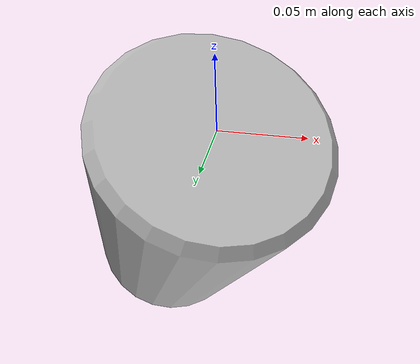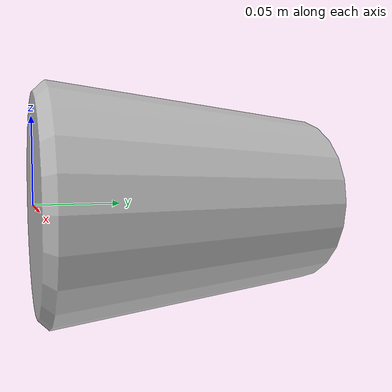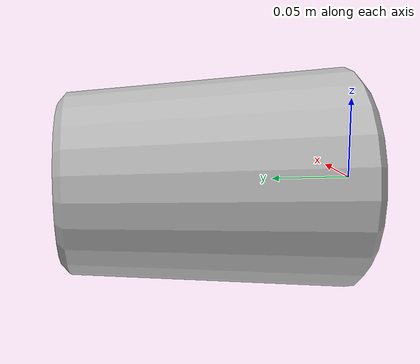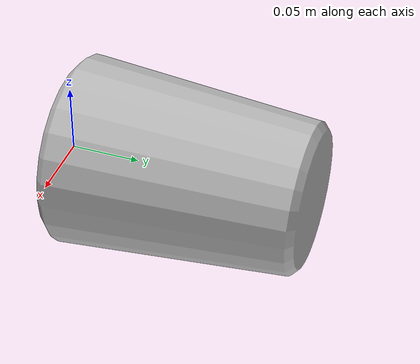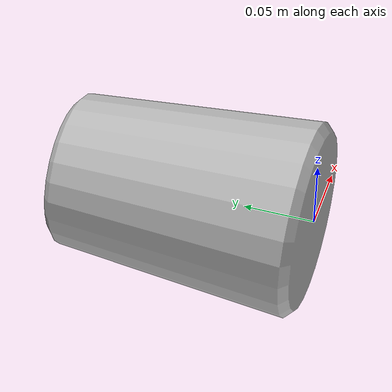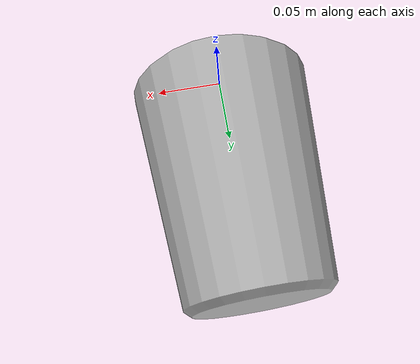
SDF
<?xml version="1.0" ?>
<sdf version="1.4">
  <model name="shelf3_metal3_1">
    <link name="body">
      <pose>0 0 0 0 0 0</pose>
      <inertial>
        <pose>   0.000000   0.082217   0.000000 0 0 0</pose>
        <mass>0.5</mass>
        <inertia>
          <ixx>0.01</ixx>
          <ixy>0</ixy>
          <ixz>0</ixz>
          <iyy>0.01</iyy>
          <iyz>0</iyz>
          <izz>0.01</izz>
        </inertia>
      </inertial>
      <collision name="collision">
        <geometry>
          <mesh>
            <uri>model://bookshelf/shelf3_items/metal3_1/metal3_1.dae</uri>
          </mesh>
        </geometry>
      </collision>
      <visual name="visual">
        <geometry>
          <mesh>
            <uri>model://bookshelf/shelf3_items/metal3_1/metal3_1.dae</uri>
          </mesh>
        </geometry>
      </visual>
    </link>
  </model>
</sdf>
